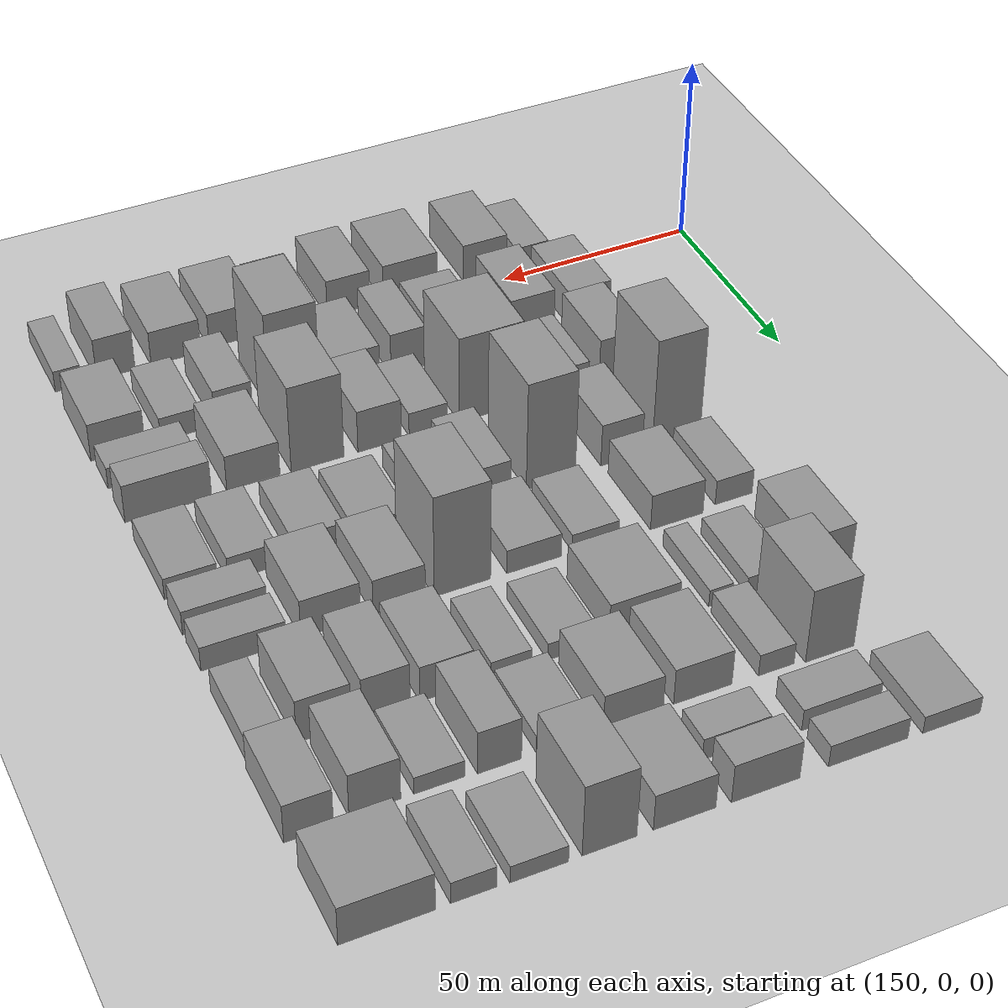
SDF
<sdf version="1.4">
 <world name="default">
  <model name="ground_plane">
   <static>1</static>
   <pose>100 65 0 0 -0 0</pose>
   <link name="link">
    <velocity_decay><linear>0</linear><angular>0</angular></velocity_decay>
    <collision name="collision">
     <geometry><plane><normal>0 0 1</normal><size>400 250</size></plane></geometry>
     <surface><friction><ode><mu>100</mu><mu2>50</mu2></ode></friction></surface>
    </collision>
    <visual name="visual">
     <geometry><plane><normal>0 0 1</normal><size>400 250</size></plane></geometry>
     <material>
      <script><name>Gazebo/Grey</name><uri>file://media/materials/scripts/gazebo.material</uri></script>
     </material>
    </visual>
   </link>
  </model>
  <model name="box_602">
   <static>1</static>
   <pose>190.21 -14.95 2 0 -0 0</pose>
   <link name="link">
    <velocity_decay><linear>0</linear><angular>0</angular></velocity_decay>
    <collision name="collision"><geometry><box><size>9 20.1 5</size></box></geometry></collision>
    <visual name="visual">
     <geometry><box><size>9 20.1 5</size></box></geometry>
     <material>
      <script><name>Gazebo/Grey</name><uri>file://media/materials/scripts/gazebo.material</uri></script>
     </material>
    </visual>
   </link>
  </model>
  <model name="box_702">
   <static>1</static>
   <pose>203.755 -14.5 5 0 -0 0</pose>
   <link name="link">
    <velocity_decay><linear>0</linear><angular>0</angular></velocity_decay>
    <collision name="collision"><geometry><box><size>12.09 21 11</size></box></geometry></collision>
    <visual name="visual">
     <geometry><box><size>12.09 21 11</size></box></geometry>
     <material>
      <script><name>Gazebo/Grey</name><uri>file://media/materials/scripts/gazebo.material</uri></script>
     </material>
    </visual>
   </link>
  </model>
  <model name="box_612">
   <static>1</static>
   <pose>188.05 12.55 5 0 -0 0</pose>
   <link name="link">
    <velocity_decay><linear>0</linear><angular>0</angular></velocity_decay>
    <collision name="collision"><geometry><box><size>11.6 20.9 10</size></box></geometry></collision>
    <visual name="visual">
     <geometry><box><size>11.6 20.9 10</size></box></geometry>
     <material>
      <script><name>Gazebo/Grey</name><uri>file://media/materials/scripts/gazebo.material</uri></script>
     </material>
    </visual>
   </link>
  </model>
  <model name="box_712">
   <static>1</static>
   <pose>203.435 12.8 6 0 -0 0</pose>
   <link name="link">
    <velocity_decay><linear>0</linear><angular>0</angular></velocity_decay>
    <collision name="collision"><geometry><box><size>11.73 20.4 12</size></box></geometry></collision>
    <visual name="visual">
     <geometry><box><size>11.73 20.4 12</size></box></geometry>
     <material>
      <script><name>Gazebo/Grey</name><uri>file://media/materials/scripts/gazebo.material</uri></script>
     </material>
    </visual>
   </link>
  </model>
  <model name="box_622">
   <static>1</static>
   <pose>191.01 35.2 6 0 -0 0</pose>
   <link name="link">
    <velocity_decay><linear>0</linear><angular>0</angular></velocity_decay>
    <collision name="collision"><geometry><box><size>11 20.4 12</size></box></geometry></collision>
    <visual name="visual">
     <geometry><box><size>11 20.4 12</size></box></geometry>
     <material>
      <script><name>Gazebo/Grey</name><uri>file://media/materials/scripts/gazebo.material</uri></script>
     </material>
    </visual>
   </link>
  </model>
  <model name="box_722">
   <static>1</static>
   <pose>204.1 35.05 3 0 -0 0</pose>
   <link name="link">
    <velocity_decay><linear>0</linear><angular>0</angular></velocity_decay>
    <collision name="collision"><geometry><box><size>9.99999 20.1 7</size></box></geometry></collision>
    <visual name="visual">
     <geometry><box><size>9.99999 20.1 7</size></box></geometry>
     <material>
      <script><name>Gazebo/Grey</name><uri>file://media/materials/scripts/gazebo.material</uri></script>
     </material>
    </visual>
   </link>
  </model>
  <model name="box_632">
   <static>1</static>
   <pose>190.48 62.85 16 0 -0 0</pose>
   <link name="link">
    <velocity_decay><linear>0</linear><angular>0</angular></velocity_decay>
    <collision name="collision"><geometry><box><size>12.5 20.3 32</size></box></geometry></collision>
    <visual name="visual">
     <geometry><box><size>12.5 20.3 32</size></box></geometry>
     <material>
      <script><name>Gazebo/Grey</name><uri>file://media/materials/scripts/gazebo.material</uri></script>
     </material>
    </visual>
   </link>
  </model>
  <model name="box_732">
   <static>1</static>
   <pose>204.67 62.85 6 0 -0 0</pose>
   <link name="link">
    <velocity_decay><linear>0</linear><angular>0</angular></velocity_decay>
    <collision name="collision"><geometry><box><size>10.66 20.3 12</size></box></geometry></collision>
    <visual name="visual">
     <geometry><box><size>10.66 20.3 12</size></box></geometry>
     <material>
      <script><name>Gazebo/Grey</name><uri>file://media/materials/scripts/gazebo.material</uri></script>
     </material>
    </visual>
   </link>
  </model>
  <model name="box_642">
   <static>1</static>
   <pose>187.837 85.3213 3.66541 0 -0 0</pose>
   <link name="link">
    <velocity_decay><linear>0</linear><angular>0</angular></velocity_decay>
    <collision name="collision"><geometry><box><size>9.5 20.3 7</size></box></geometry></collision>
    <visual name="visual">
     <geometry><box><size>9.5 20.3 7</size></box></geometry>
     <material>
      <script><name>Gazebo/Grey</name><uri>file://media/materials/scripts/gazebo.material</uri></script>
     </material>
    </visual>
   </link>
  </model>
  <model name="box_742">
   <static>1</static>
   <pose>202.948 86.2342 5 0 -0 0</pose>
   <link name="link">
    <velocity_decay><linear>0</linear><angular>0</angular></velocity_decay>
    <collision name="collision"><geometry><box><size>13.24 20.8 10</size></box></geometry></collision>
    <visual name="visual">
     <geometry><box><size>13.24 20.8 10</size></box></geometry>
     <material>
      <script><name>Gazebo/Grey</name><uri>file://media/materials/scripts/gazebo.material</uri></script>
     </material>
    </visual>
   </link>
  </model>
  <model name="box_552">
   <static>1</static>
   <pose>179.86 112.55 5 0 -0 0</pose>
   <link name="link">
    <velocity_decay><linear>0</linear><angular>0</angular></velocity_decay>
    <collision name="collision"><geometry><box><size>12.6 20.9 11</size></box></geometry></collision>
    <visual name="visual">
     <geometry><box><size>12.6 20.9 11</size></box></geometry>
     <material>
      <script><name>Gazebo/Grey</name><uri>file://media/materials/scripts/gazebo.material</uri></script>
     </material>
    </visual>
   </link>
  </model>
  <model name="box_652">
   <static>1</static>
   <pose>194.65 112.6 2 0 -0 0</pose>
   <link name="link">
    <velocity_decay><linear>0</linear><angular>0</angular></velocity_decay>
    <collision name="collision"><geometry><box><size>10.4 20.8 5</size></box></geometry></collision>
    <visual name="visual">
     <geometry><box><size>10.4 20.8 5</size></box></geometry>
     <material>
      <script><name>Gazebo/Grey</name><uri>file://media/materials/scripts/gazebo.material</uri></script>
     </material>
    </visual>
   </link>
  </model>
  <model name="box_752">
   <static>1</static>
   <pose>206.375 112.5 2 0 -0 0</pose>
   <link name="link">
    <velocity_decay><linear>0</linear><angular>0</angular></velocity_decay>
    <collision name="collision"><geometry><box><size>5.84997 21 5</size></box></geometry></collision>
    <visual name="visual">
     <geometry><box><size>5.84997 21 5</size></box></geometry>
     <material>
      <script><name>Gazebo/Grey</name><uri>file://media/materials/scripts/gazebo.material</uri></script>
     </material>
    </visual>
   </link>
  </model>
  <model name="box_662">
   <static>1</static>
   <pose>192.87 135.45 10 0 -0 0</pose>
   <link name="link">
    <velocity_decay><linear>0</linear><angular>0</angular></velocity_decay>
    <collision name="collision"><geometry><box><size>11.8 20.9 21</size></box></geometry></collision>
    <visual name="visual">
     <geometry><box><size>11.8 20.9 21</size></box></geometry>
     <material>
      <script><name>Gazebo/Grey</name><uri>file://media/materials/scripts/gazebo.material</uri></script>
     </material>
    </visual>
   </link>
  </model>
  <model name="box_762">
   <static>1</static>
   <pose>205.53 135.2 3 0 -0 0</pose>
   <link name="link">
    <velocity_decay><linear>0</linear><angular>0</angular></velocity_decay>
    <collision name="collision"><geometry><box><size>8.54002 20.4 6</size></box></geometry></collision>
    <visual name="visual">
     <geometry><box><size>8.54002 20.4 6</size></box></geometry>
     <material>
      <script><name>Gazebo/Grey</name><uri>file://media/materials/scripts/gazebo.material</uri></script>
     </material>
    </visual>
   </link>
  </model>
  <model name="box_572">
   <static>1</static>
   <pose>180.26 162.7 2 0 -0 0</pose>
   <link name="link">
    <velocity_decay><linear>0</linear><angular>0</angular></velocity_decay>
    <collision name="collision"><geometry><box><size>13.8 20.6 5</size></box></geometry></collision>
    <visual name="visual">
     <geometry><box><size>13.8 20.6 5</size></box></geometry>
     <material>
      <script><name>Gazebo/Grey</name><uri>file://media/materials/scripts/gazebo.material</uri></script>
     </material>
    </visual>
   </link>
  </model>
  <model name="box_672">
   <static>1</static>
   <pose>200.085 157.2 3 0 -0 0</pose>
   <link name="link">
    <velocity_decay><linear>0</linear><angular>0</angular></velocity_decay>
    <collision name="collision"><geometry><box><size>18.63 10.4 6</size></box></geometry></collision>
    <visual name="visual">
     <geometry><box><size>18.63 10.4 6</size></box></geometry>
     <material>
      <script><name>Gazebo/Grey</name><uri>file://media/materials/scripts/gazebo.material</uri></script>
     </material>
    </visual>
   </link>
  </model>
  <model name="box_6722">
   <static>1</static>
   <pose>200.085 168.8 3 0 -0 0</pose>
   <link name="link">
    <velocity_decay><linear>0</linear><angular>0</angular></velocity_decay>
    <collision name="collision"><geometry><box><size>18.63 8.4 6</size></box></geometry></collision>
    <visual name="visual">
     <geometry><box><size>18.63 8.4 6</size></box></geometry>
     <material>
      <script><name>Gazebo/Grey</name><uri>file://media/materials/scripts/gazebo.material</uri></script>
     </material>
    </visual>
   </link>
  </model>
  <model name="box_103">
   <static>1</static>
   <pose>224 -14.75 5 0 -0 0</pose>
   <link name="link">
    <velocity_decay><linear>0</linear><angular>0</angular></velocity_decay>
    <collision name="collision"><geometry><box><size>14.6 20.5 11</size></box></geometry></collision>
    <visual name="visual">
     <geometry><box><size>14.6 20.5 11</size></box></geometry>
     <material>
      <script><name>Gazebo/Grey</name><uri>file://media/materials/scripts/gazebo.material</uri></script>
     </material>
    </visual>
   </link>
  </model>
  <model name="box_203">
   <static>1</static>
   <pose>240.62 -14.75 5 0 -0 0</pose>
   <link name="link">
    <velocity_decay><linear>0</linear><angular>0</angular></velocity_decay>
    <collision name="collision"><geometry><box><size>11.4 20.5 11</size></box></geometry></collision>
    <visual name="visual">
     <geometry><box><size>11.4 20.5 11</size></box></geometry>
     <material>
      <script><name>Gazebo/Grey</name><uri>file://media/materials/scripts/gazebo.material</uri></script>
     </material>
    </visual>
   </link>
  </model>
  <model name="box_303">
   <static>1</static>
   <pose>255.46 -14.6 3 0 -0 0</pose>
   <link name="link">
    <velocity_decay><linear>0</linear><angular>0</angular></velocity_decay>
    <collision name="collision"><geometry><box><size>11.6 20.8 7</size></box></geometry></collision>
    <visual name="visual">
     <geometry><box><size>11.6 20.8 7</size></box></geometry>
     <material>
      <script><name>Gazebo/Grey</name><uri>file://media/materials/scripts/gazebo.material</uri></script>
     </material>
    </visual>
   </link>
  </model>
  <model name="box_403">
   <static>1</static>
   <pose>270.47 -14.85 5 0 -0 0</pose>
   <link name="link">
    <velocity_decay><linear>0</linear><angular>0</angular></velocity_decay>
    <collision name="collision"><geometry><box><size>13.2 20.3 10</size></box></geometry></collision>
    <visual name="visual">
     <geometry><box><size>13.2 20.3 10</size></box></geometry>
     <material>
      <script><name>Gazebo/Grey</name><uri>file://media/materials/scripts/gazebo.material</uri></script>
     </material>
    </visual>
   </link>
  </model>
  <model name="box_503">
   <static>1</static>
   <pose>285.78 -14.5 5 0 -0 0</pose>
   <link name="link">
    <velocity_decay><linear>0</linear><angular>0</angular></velocity_decay>
    <collision name="collision"><geometry><box><size>12.6 21 10</size></box></geometry></collision>
    <visual name="visual">
     <geometry><box><size>12.6 21 10</size></box></geometry>
     <material>
      <script><name>Gazebo/Grey</name><uri>file://media/materials/scripts/gazebo.material</uri></script>
     </material>
    </visual>
   </link>
  </model>
  <model name="box_603">
   <static>1</static>
   <pose>300.86 -14.6 6 0 -0 0</pose>
   <link name="link">
    <velocity_decay><linear>0</linear><angular>0</angular></velocity_decay>
    <collision name="collision"><geometry><box><size>9.6 20.8 12</size></box></geometry></collision>
    <visual name="visual">
     <geometry><box><size>9.6 20.8 12</size></box></geometry>
     <material>
      <script><name>Gazebo/Grey</name><uri>file://media/materials/scripts/gazebo.material</uri></script>
     </material>
    </visual>
   </link>
  </model>
  <model name="box_703">
   <static>1</static>
   <pose>312.725 -14.5 3 0 -0 0</pose>
   <link name="link">
    <velocity_decay><linear>0</linear><angular>0</angular></velocity_decay>
    <collision name="collision"><geometry><box><size>6.55005 21 6</size></box></geometry></collision>
    <visual name="visual">
     <geometry><box><size>6.55005 21 6</size></box></geometry>
     <material>
      <script><name>Gazebo/Grey</name><uri>file://media/materials/scripts/gazebo.material</uri></script>
     </material>
    </visual>
   </link>
  </model>
  <model name="box_113">
   <static>1</static>
   <pose>223.1 12.65 5 0 -0 0</pose>
   <link name="link">
    <velocity_decay><linear>0</linear><angular>0</angular></velocity_decay>
    <collision name="collision"><geometry><box><size>13.4 20.7 10</size></box></geometry></collision>
    <visual name="visual">
     <geometry><box><size>13.4 20.7 10</size></box></geometry>
     <material>
      <script><name>Gazebo/Grey</name><uri>file://media/materials/scripts/gazebo.material</uri></script>
     </material>
    </visual>
   </link>
  </model>
  <model name="box_213">
   <static>1</static>
   <pose>236.36 12.8 6 0 -0 0</pose>
   <link name="link">
    <velocity_decay><linear>0</linear><angular>0</angular></velocity_decay>
    <collision name="collision"><geometry><box><size>9.1 20.4 12</size></box></geometry></collision>
    <visual name="visual">
     <geometry><box><size>9.1 20.4 12</size></box></geometry>
     <material>
      <script><name>Gazebo/Grey</name><uri>file://media/materials/scripts/gazebo.material</uri></script>
     </material>
    </visual>
   </link>
  </model>
  <model name="box_313">
   <static>1</static>
   <pose>250.4 12.6 5 0 -0 0</pose>
   <link name="link">
    <velocity_decay><linear>0</linear><angular>0</angular></velocity_decay>
    <collision name="collision"><geometry><box><size>13.2 20.8 10</size></box></geometry></collision>
    <visual name="visual">
     <geometry><box><size>13.2 20.8 10</size></box></geometry>
     <material>
      <script><name>Gazebo/Grey</name><uri>file://media/materials/scripts/gazebo.material</uri></script>
     </material>
    </visual>
   </link>
  </model>
  <model name="box_413">
   <static>1</static>
   <pose>265.68 12.9 14 0 -0 0</pose>
   <link name="link">
    <velocity_decay><linear>0</linear><angular>0</angular></velocity_decay>
    <collision name="collision"><geometry><box><size>12.9 20.2 28</size></box></geometry></collision>
    <visual name="visual">
     <geometry><box><size>12.9 20.2 28</size></box></geometry>
     <material>
      <script><name>Gazebo/Grey</name><uri>file://media/materials/scripts/gazebo.material</uri></script>
     </material>
    </visual>
   </link>
  </model>
  <model name="box_513">
   <static>1</static>
   <pose>280.86 12.75 5 0 -0 0</pose>
   <link name="link">
    <velocity_decay><linear>0</linear><angular>0</angular></velocity_decay>
    <collision name="collision"><geometry><box><size>9.5 20.5 10</size></box></geometry></collision>
    <visual name="visual">
     <geometry><box><size>9.5 20.5 10</size></box></geometry>
     <material>
      <script><name>Gazebo/Grey</name><uri>file://media/materials/scripts/gazebo.material</uri></script>
     </material>
    </visual>
   </link>
  </model>
  <model name="box_613">
   <static>1</static>
   <pose>293.97 12.75 3 0 -0 0</pose>
   <link name="link">
    <velocity_decay><linear>0</linear><angular>0</angular></velocity_decay>
    <collision name="collision"><geometry><box><size>10 20.5 7</size></box></geometry></collision>
    <visual name="visual">
     <geometry><box><size>10 20.5 7</size></box></geometry>
     <material>
      <script><name>Gazebo/Grey</name><uri>file://media/materials/scripts/gazebo.material</uri></script>
     </material>
    </visual>
   </link>
  </model>
  <model name="box_713">
   <static>1</static>
   <pose>309.26 12.6 5 0 -0 0</pose>
   <link name="link">
    <velocity_decay><linear>0</linear><angular>0</angular></velocity_decay>
    <collision name="collision"><geometry><box><size>13.08 20.8 11</size></box></geometry></collision>
    <visual name="visual">
     <geometry><box><size>13.08 20.8 11</size></box></geometry>
     <material>
      <script><name>Gazebo/Grey</name><uri>file://media/materials/scripts/gazebo.material</uri></script>
     </material>
    </visual>
   </link>
  </model>
  <model name="box_123">
   <static>1</static>
   <pose>224.85 35.15 12 0 -0 0</pose>
   <link name="link">
    <velocity_decay><linear>0</linear><angular>0</angular></velocity_decay>
    <collision name="collision"><geometry><box><size>16.5 20.3 25</size></box></geometry></collision>
    <visual name="visual">
     <geometry><box><size>16.5 20.3 25</size></box></geometry>
     <material>
      <script><name>Gazebo/Grey</name><uri>file://media/materials/scripts/gazebo.material</uri></script>
     </material>
    </visual>
   </link>
  </model>
  <model name="box_223">
   <static>1</static>
   <pose>240.85 35.05 3 0 -0 0</pose>
   <link name="link">
    <velocity_decay><linear>0</linear><angular>0</angular></velocity_decay>
    <collision name="collision"><geometry><box><size>9.8 20.1 7</size></box></geometry></collision>
    <visual name="visual">
     <geometry><box><size>9.8 20.1 7</size></box></geometry>
     <material>
      <script><name>Gazebo/Grey</name><uri>file://media/materials/scripts/gazebo.material</uri></script>
     </material>
    </visual>
   </link>
  </model>
  <model name="box_323">
   <static>1</static>
   <pose>253.41 35.35 6 0 -0 0</pose>
   <link name="link">
    <velocity_decay><linear>0</linear><angular>0</angular></velocity_decay>
    <collision name="collision"><geometry><box><size>10.9 20.7 12</size></box></geometry></collision>
    <visual name="visual">
     <geometry><box><size>10.9 20.7 12</size></box></geometry>
     <material>
      <script><name>Gazebo/Grey</name><uri>file://media/materials/scripts/gazebo.material</uri></script>
     </material>
    </visual>
   </link>
  </model>
  <model name="box_423">
   <static>1</static>
   <pose>268.77 35.25 12 0 -0 0</pose>
   <link name="link">
    <velocity_decay><linear>0</linear><angular>0</angular></velocity_decay>
    <collision name="collision"><geometry><box><size>13 20.5 25</size></box></geometry></collision>
    <visual name="visual">
     <geometry><box><size>13 20.5 25</size></box></geometry>
     <material>
      <script><name>Gazebo/Grey</name><uri>file://media/materials/scripts/gazebo.material</uri></script>
     </material>
    </visual>
   </link>
  </model>
  <model name="box_523">
   <static>1</static>
   <pose>284.47 35.3 5 0 -0 0</pose>
   <link name="link">
    <velocity_decay><linear>0</linear><angular>0</angular></velocity_decay>
    <collision name="collision"><geometry><box><size>12.9 20.6 10</size></box></geometry></collision>
    <visual name="visual">
     <geometry><box><size>12.9 20.6 10</size></box></geometry>
     <material>
      <script><name>Gazebo/Grey</name><uri>file://media/materials/scripts/gazebo.material</uri></script>
     </material>
    </visual>
   </link>
  </model>
  <model name="box_623">
   <static>1</static>
   <pose>304.945 29.45 3 0 -0 0</pose>
   <link name="link">
    <velocity_decay><linear>0</linear><angular>0</angular></velocity_decay>
    <collision name="collision"><geometry><box><size>20.51 8.9 6</size></box></geometry></collision>
    <visual name="visual">
     <geometry><box><size>20.51 8.9 6</size></box></geometry>
     <material>
      <script><name>Gazebo/Grey</name><uri>file://media/materials/scripts/gazebo.material</uri></script>
     </material>
    </visual>
   </link>
  </model>
  <model name="box_6232">
   <static>1</static>
   <pose>304.945 41.9 5 0 -0 0</pose>
   <link name="link">
    <velocity_decay><linear>0</linear><angular>0</angular></velocity_decay>
    <collision name="collision"><geometry><box><size>20.51 8.2 11</size></box></geometry></collision>
    <visual name="visual">
     <geometry><box><size>20.51 8.2 11</size></box></geometry>
     <material>
      <script><name>Gazebo/Grey</name><uri>file://media/materials/scripts/gazebo.material</uri></script>
     </material>
    </visual>
   </link>
  </model>
  <model name="box_133">
   <static>1</static>
   <pose>222.7 62.7 15 0 -0 0</pose>
   <link name="link">
    <velocity_decay><linear>0</linear><angular>0</angular></velocity_decay>
    <collision name="collision"><geometry><box><size>12.4 20.6 31</size></box></geometry></collision>
    <visual name="visual">
     <geometry><box><size>12.4 20.6 31</size></box></geometry>
     <material>
      <script><name>Gazebo/Grey</name><uri>file://media/materials/scripts/gazebo.material</uri></script>
     </material>
    </visual>
   </link>
  </model>
  <model name="box_233">
   <static>1</static>
   <pose>238.07 62.8 5 0 -0 0</pose>
   <link name="link">
    <velocity_decay><linear>0</linear><angular>0</angular></velocity_decay>
    <collision name="collision"><geometry><box><size>10.7 20.4 10</size></box></geometry></collision>
    <visual name="visual">
     <geometry><box><size>10.7 20.4 10</size></box></geometry>
     <material>
      <script><name>Gazebo/Grey</name><uri>file://media/materials/scripts/gazebo.material</uri></script>
     </material>
    </visual>
   </link>
  </model>
  <model name="box_333">
   <static>1</static>
   <pose>250.67 62.65 3 0 -0 0</pose>
   <link name="link">
    <velocity_decay><linear>0</linear><angular>0</angular></velocity_decay>
    <collision name="collision"><geometry><box><size>9.6 20.7 7</size></box></geometry></collision>
    <visual name="visual">
     <geometry><box><size>9.6 20.7 7</size></box></geometry>
     <material>
      <script><name>Gazebo/Grey</name><uri>file://media/materials/scripts/gazebo.material</uri></script>
     </material>
    </visual>
   </link>
  </model>
  <model name="box_433">
   <static>1</static>
   <pose>264.66 62.7 2 0 -0 0</pose>
   <link name="link">
    <velocity_decay><linear>0</linear><angular>0</angular></velocity_decay>
    <collision name="collision"><geometry><box><size>13 20.6 5</size></box></geometry></collision>
    <visual name="visual">
     <geometry><box><size>13 20.6 5</size></box></geometry>
     <material>
      <script><name>Gazebo/Grey</name><uri>file://media/materials/scripts/gazebo.material</uri></script>
     </material>
    </visual>
   </link>
  </model>
  <model name="box_533">
   <static>1</static>
   <pose>279.41 62.85 3 0 -0 0</pose>
   <link name="link">
    <velocity_decay><linear>0</linear><angular>0</angular></velocity_decay>
    <collision name="collision"><geometry><box><size>12.3 20.3 7</size></box></geometry></collision>
    <visual name="visual">
     <geometry><box><size>12.3 20.3 7</size></box></geometry>
     <material>
      <script><name>Gazebo/Grey</name><uri>file://media/materials/scripts/gazebo.material</uri></script>
     </material>
    </visual>
   </link>
  </model>
  <model name="box_633">
   <static>1</static>
   <pose>294.89 62.65 3 0 -0 0</pose>
   <link name="link">
    <velocity_decay><linear>0</linear><angular>0</angular></velocity_decay>
    <collision name="collision"><geometry><box><size>11.5 20.7 7</size></box></geometry></collision>
    <visual name="visual">
     <geometry><box><size>11.5 20.7 7</size></box></geometry>
     <material>
      <script><name>Gazebo/Grey</name><uri>file://media/materials/scripts/gazebo.material</uri></script>
     </material>
    </visual>
   </link>
  </model>
  <model name="box_733">
   <static>1</static>
   <pose>309.09 62.6 3 0 -0 0</pose>
   <link name="link">
    <velocity_decay><linear>0</linear><angular>0</angular></velocity_decay>
    <collision name="collision"><geometry><box><size>12.22 20.8 6</size></box></geometry></collision>
    <visual name="visual">
     <geometry><box><size>12.22 20.8 6</size></box></geometry>
     <material>
      <script><name>Gazebo/Grey</name><uri>file://media/materials/scripts/gazebo.material</uri></script>
     </material>
    </visual>
   </link>
  </model>
  <model name="box_143">
   <static>1</static>
   <pose>222.6 85.2 2 0 -0 0</pose>
   <link name="link">
    <velocity_decay><linear>0</linear><angular>0</angular></velocity_decay>
    <collision name="collision"><geometry><box><size>11.6 20.4 5</size></box></geometry></collision>
    <visual name="visual">
     <geometry><box><size>11.6 20.4 5</size></box></geometry>
     <material>
      <script><name>Gazebo/Grey</name><uri>file://media/materials/scripts/gazebo.material</uri></script>
     </material>
    </visual>
   </link>
  </model>
  <model name="box_243">
   <static>1</static>
   <pose>237.88 85.45 3 0 -0 0</pose>
   <link name="link">
    <velocity_decay><linear>0</linear><angular>0</angular></velocity_decay>
    <collision name="collision"><geometry><box><size>13.2 20.9 7</size></box></geometry></collision>
    <visual name="visual">
     <geometry><box><size>13.2 20.9 7</size></box></geometry>
     <material>
      <script><name>Gazebo/Grey</name><uri>file://media/materials/scripts/gazebo.material</uri></script>
     </material>
    </visual>
   </link>
  </model>
  <model name="box_343">
   <static>1</static>
   <pose>255.11 85.45 14 0 -0 0</pose>
   <link name="link">
    <velocity_decay><linear>0</linear><angular>0</angular></velocity_decay>
    <collision name="collision"><geometry><box><size>13.4 20.9 29</size></box></geometry></collision>
    <visual name="visual">
     <geometry><box><size>13.4 20.9 29</size></box></geometry>
     <material>
      <script><name>Gazebo/Grey</name><uri>file://media/materials/scripts/gazebo.material</uri></script>
     </material>
    </visual>
   </link>
  </model>
  <model name="box_443">
   <static>1</static>
   <pose>269.92 85.4 5 0 -0 0</pose>
   <link name="link">
    <velocity_decay><linear>0</linear><angular>0</angular></velocity_decay>
    <collision name="collision"><geometry><box><size>12.2 20.8 10</size></box></geometry></collision>
    <visual name="visual">
     <geometry><box><size>12.2 20.8 10</size></box></geometry>
     <material>
      <script><name>Gazebo/Grey</name><uri>file://media/materials/scripts/gazebo.material</uri></script>
     </material>
    </visual>
   </link>
  </model>
  <model name="box_543">
   <static>1</static>
   <pose>285.68 85.3 5 0 -0 0</pose>
   <link name="link">
    <velocity_decay><linear>0</linear><angular>0</angular></velocity_decay>
    <collision name="collision"><geometry><box><size>13.7 20.6 11</size></box></geometry></collision>
    <visual name="visual">
     <geometry><box><size>13.7 20.6 11</size></box></geometry>
     <material>
      <script><name>Gazebo/Grey</name><uri>file://media/materials/scripts/gazebo.material</uri></script>
     </material>
    </visual>
   </link>
  </model>
  <model name="box_643">
   <static>1</static>
   <pose>305.51 79.75 3 0 -0 0</pose>
   <link name="link">
    <velocity_decay><linear>0</linear><angular>0</angular></velocity_decay>
    <collision name="collision"><geometry><box><size>19.1799 9.5 7</size></box></geometry></collision>
    <visual name="visual">
     <geometry><box><size>19.1799 9.5 7</size></box></geometry>
     <material>
      <script><name>Gazebo/Grey</name><uri>file://media/materials/scripts/gazebo.material</uri></script>
     </material>
    </visual>
   </link>
  </model>
  <model name="box_6432">
   <static>1</static>
   <pose>305.51 91.3 3 0 -0 0</pose>
   <link name="link">
    <velocity_decay><linear>0</linear><angular>0</angular></velocity_decay>
    <collision name="collision"><geometry><box><size>19.1799 9.4 7</size></box></geometry></collision>
    <visual name="visual">
     <geometry><box><size>19.1799 9.4 7</size></box></geometry>
     <material>
      <script><name>Gazebo/Grey</name><uri>file://media/materials/scripts/gazebo.material</uri></script>
     </material>
    </visual>
   </link>
  </model>
  <model name="box_153">
   <static>1</static>
   <pose>224.9 112.9 5 0 -0 0</pose>
   <link name="link">
    <velocity_decay><linear>0</linear><angular>0</angular></velocity_decay>
    <collision name="collision"><geometry><box><size>16.8 20.2 10</size></box></geometry></collision>
    <visual name="visual">
     <geometry><box><size>16.8 20.2 10</size></box></geometry>
     <material>
      <script><name>Gazebo/Grey</name><uri>file://media/materials/scripts/gazebo.material</uri></script>
     </material>
    </visual>
   </link>
  </model>
  <model name="box_253">
   <static>1</static>
   <pose>241.89 112.9 2 0 -0 0</pose>
   <link name="link">
    <velocity_decay><linear>0</linear><angular>0</angular></velocity_decay>
    <collision name="collision"><geometry><box><size>11.7 20.2 5</size></box></geometry></collision>
    <visual name="visual">
     <geometry><box><size>11.7 20.2 5</size></box></geometry>
     <material>
      <script><name>Gazebo/Grey</name><uri>file://media/materials/scripts/gazebo.material</uri></script>
     </material>
    </visual>
   </link>
  </model>
  <model name="box_353">
   <static>1</static>
   <pose>256.09 112.65 2 0 -0 0</pose>
   <link name="link">
    <velocity_decay><linear>0</linear><angular>0</angular></velocity_decay>
    <collision name="collision"><geometry><box><size>9.5 20.7 5</size></box></geometry></collision>
    <visual name="visual">
     <geometry><box><size>9.5 20.7 5</size></box></geometry>
     <material>
      <script><name>Gazebo/Grey</name><uri>file://media/materials/scripts/gazebo.material</uri></script>
     </material>
    </visual>
   </link>
  </model>
  <model name="box_453">
   <static>1</static>
   <pose>270.9 112.55 5 0 -0 0</pose>
   <link name="link">
    <velocity_decay><linear>0</linear><angular>0</angular></velocity_decay>
    <collision name="collision"><geometry><box><size>12.2 20.9 10</size></box></geometry></collision>
    <visual name="visual">
     <geometry><box><size>12.2 20.9 10</size></box></geometry>
     <material>
      <script><name>Gazebo/Grey</name><uri>file://media/materials/scripts/gazebo.material</uri></script>
     </material>
    </visual>
   </link>
  </model>
  <model name="box_553">
   <static>1</static>
   <pose>284.52 112.75 6 0 -0 0</pose>
   <link name="link">
    <velocity_decay><linear>0</linear><angular>0</angular></velocity_decay>
    <collision name="collision"><geometry><box><size>10.8 20.5 12</size></box></geometry></collision>
    <visual name="visual">
     <geometry><box><size>10.8 20.5 12</size></box></geometry>
     <material>
      <script><name>Gazebo/Grey</name><uri>file://media/materials/scripts/gazebo.material</uri></script>
     </material>
    </visual>
   </link>
  </model>
  <model name="box_653">
   <static>1</static>
   <pose>298.21 112.55 6 0 -0 0</pose>
   <link name="link">
    <velocity_decay><linear>0</linear><angular>0</angular></velocity_decay>
    <collision name="collision"><geometry><box><size>12 20.9 12</size></box></geometry></collision>
    <visual name="visual">
     <geometry><box><size>12 20.9 12</size></box></geometry>
     <material>
      <script><name>Gazebo/Grey</name><uri>file://media/materials/scripts/gazebo.material</uri></script>
     </material>
    </visual>
   </link>
  </model>
  <model name="box_753">
   <static>1</static>
   <pose>311 112.6 3 0 -0 0</pose>
   <link name="link">
    <velocity_decay><linear>0</linear><angular>0</angular></velocity_decay>
    <collision name="collision"><geometry><box><size>8.39998 20.8 7</size></box></geometry></collision>
    <visual name="visual">
     <geometry><box><size>8.39998 20.8 7</size></box></geometry>
     <material>
      <script><name>Gazebo/Grey</name><uri>file://media/materials/scripts/gazebo.material</uri></script>
     </material>
    </visual>
   </link>
  </model>
  <model name="box_163">
   <static>1</static>
   <pose>222.85 135.1 5 0 -0 0</pose>
   <link name="link">
    <velocity_decay><linear>0</linear><angular>0</angular></velocity_decay>
    <collision name="collision"><geometry><box><size>13.7 20.2 10</size></box></geometry></collision>
    <visual name="visual">
     <geometry><box><size>13.7 20.2 10</size></box></geometry>
     <material>
      <script><name>Gazebo/Grey</name><uri>file://media/materials/scripts/gazebo.material</uri></script>
     </material>
    </visual>
   </link>
  </model>
  <model name="box_263">
   <static>1</static>
   <pose>239.26 135.35 5 0 -0 0</pose>
   <link name="link">
    <velocity_decay><linear>0</linear><angular>0</angular></velocity_decay>
    <collision name="collision"><geometry><box><size>13.8 20.7 10</size></box></geometry></collision>
    <visual name="visual">
     <geometry><box><size>13.8 20.7 10</size></box></geometry>
     <material>
      <script><name>Gazebo/Grey</name><uri>file://media/materials/scripts/gazebo.material</uri></script>
     </material>
    </visual>
   </link>
  </model>
  <model name="box_363">
   <static>1</static>
   <pose>254.92 135.1 2 0 -0 0</pose>
   <link name="link">
    <velocity_decay><linear>0</linear><angular>0</angular></velocity_decay>
    <collision name="collision"><geometry><box><size>12.3 20.2 5</size></box></geometry></collision>
    <visual name="visual">
     <geometry><box><size>12.3 20.2 5</size></box></geometry>
     <material>
      <script><name>Gazebo/Grey</name><uri>file://media/materials/scripts/gazebo.material</uri></script>
     </material>
    </visual>
   </link>
  </model>
  <model name="box_463">
   <static>1</static>
   <pose>269.43 135.35 6 0 -0 0</pose>
   <link name="link">
    <velocity_decay><linear>0</linear><angular>0</angular></velocity_decay>
    <collision name="collision"><geometry><box><size>9.7 20.7 12</size></box></geometry></collision>
    <visual name="visual">
     <geometry><box><size>9.7 20.7 12</size></box></geometry>
     <material>
      <script><name>Gazebo/Grey</name><uri>file://media/materials/scripts/gazebo.material</uri></script>
     </material>
    </visual>
   </link>
  </model>
  <model name="box_563">
   <static>1</static>
   <pose>282.36 135.05 2 0 -0 0</pose>
   <link name="link">
    <velocity_decay><linear>0</linear><angular>0</angular></velocity_decay>
    <collision name="collision"><geometry><box><size>11.1 20.1 5</size></box></geometry></collision>
    <visual name="visual">
     <geometry><box><size>11.1 20.1 5</size></box></geometry>
     <material>
      <script><name>Gazebo/Grey</name><uri>file://media/materials/scripts/gazebo.material</uri></script>
     </material>
    </visual>
   </link>
  </model>
  <model name="box_663">
   <static>1</static>
   <pose>296.36 135.15 6 0 -0 0</pose>
   <link name="link">
    <velocity_decay><linear>0</linear><angular>0</angular></velocity_decay>
    <collision name="collision"><geometry><box><size>11.1 20.3 12</size></box></geometry></collision>
    <visual name="visual">
     <geometry><box><size>11.1 20.3 12</size></box></geometry>
     <material>
      <script><name>Gazebo/Grey</name><uri>file://media/materials/scripts/gazebo.material</uri></script>
     </material>
    </visual>
   </link>
  </model>
  <model name="box_763">
   <static>1</static>
   <pose>310.67 135.5 5 0 -0 0</pose>
   <link name="link">
    <velocity_decay><linear>0</linear><angular>0</angular></velocity_decay>
    <collision name="collision"><geometry><box><size>10.46 21 11</size></box></geometry></collision>
    <visual name="visual">
     <geometry><box><size>10.46 21 11</size></box></geometry>
     <material>
      <script><name>Gazebo/Grey</name><uri>file://media/materials/scripts/gazebo.material</uri></script>
     </material>
    </visual>
   </link>
  </model>
  <model name="box_173">
   <static>1</static>
   <pose>223.8 156.5 3 0 -0 0</pose>
   <link name="link">
    <velocity_decay><linear>0</linear><angular>0</angular></velocity_decay>
    <collision name="collision"><geometry><box><size>15.6 9 6</size></box></geometry></collision>
    <visual name="visual">
     <geometry><box><size>15.6 9 6</size></box></geometry>
     <material>
      <script><name>Gazebo/Grey</name><uri>file://media/materials/scripts/gazebo.material</uri></script>
     </material>
    </visual>
   </link>
  </model>
  <model name="box_1732">
   <static>1</static>
   <pose>223.8 168.85 5 0 -0 0</pose>
   <link name="link">
    <velocity_decay><linear>0</linear><angular>0</angular></velocity_decay>
    <collision name="collision"><geometry><box><size>15.6 8.3 11</size></box></geometry></collision>
    <visual name="visual">
     <geometry><box><size>15.6 8.3 11</size></box></geometry>
     <material>
      <script><name>Gazebo/Grey</name><uri>file://media/materials/scripts/gazebo.material</uri></script>
     </material>
    </visual>
   </link>
  </model>
  <model name="box_273">
   <static>1</static>
   <pose>242.06 162.75 5 0 -0 0</pose>
   <link name="link">
    <velocity_decay><linear>0</linear><angular>0</angular></velocity_decay>
    <collision name="collision"><geometry><box><size>13.9 20.5 10</size></box></geometry></collision>
    <visual name="visual">
     <geometry><box><size>13.9 20.5 10</size></box></geometry>
     <material>
      <script><name>Gazebo/Grey</name><uri>file://media/materials/scripts/gazebo.material</uri></script>
     </material>
    </visual>
   </link>
  </model>
  <model name="box_373">
   <static>1</static>
   <pose>258.59 162.65 10 0 -0 0</pose>
   <link name="link">
    <velocity_decay><linear>0</linear><angular>0</angular></velocity_decay>
    <collision name="collision"><geometry><box><size>11.9 20.7 20</size></box></geometry></collision>
    <visual name="visual">
     <geometry><box><size>11.9 20.7 20</size></box></geometry>
     <material>
      <script><name>Gazebo/Grey</name><uri>file://media/materials/scripts/gazebo.material</uri></script>
     </material>
    </visual>
   </link>
  </model>
  <model name="box_473">
   <static>1</static>
   <pose>273.71 162.7 2 0 -0 0</pose>
   <link name="link">
    <velocity_decay><linear>0</linear><angular>0</angular></velocity_decay>
    <collision name="collision"><geometry><box><size>12.5 20.6 5</size></box></geometry></collision>
    <visual name="visual">
     <geometry><box><size>12.5 20.6 5</size></box></geometry>
     <material>
      <script><name>Gazebo/Grey</name><uri>file://media/materials/scripts/gazebo.material</uri></script>
     </material>
    </visual>
   </link>
  </model>
  <model name="box_573">
   <static>1</static>
   <pose>287.57 162.5 3 0 -0 0</pose>
   <link name="link">
    <velocity_decay><linear>0</linear><angular>0</angular></velocity_decay>
    <collision name="collision"><geometry><box><size>9.7 21 6</size></box></geometry></collision>
    <visual name="visual">
     <geometry><box><size>9.7 21 6</size></box></geometry>
     <material>
      <script><name>Gazebo/Grey</name><uri>file://media/materials/scripts/gazebo.material</uri></script>
     </material>
    </visual>
   </link>
  </model>
  <model name="box_673">
   <static>1</static>
   <pose>305.535 162.85 5 0 -0 0</pose>
   <link name="link">
    <velocity_decay><linear>0</linear><angular>0</angular></velocity_decay>
    <collision name="collision"><geometry><box><size>19.93 20.3 11</size></box></geometry></collision>
    <visual name="visual">
     <geometry><box><size>19.93 20.3 11</size></box></geometry>
     <material>
      <script><name>Gazebo/Grey</name><uri>file://media/materials/scripts/gazebo.material</uri></script>
     </material>
    </visual>
   </link>
  </model>
 </world>
</sdf>
